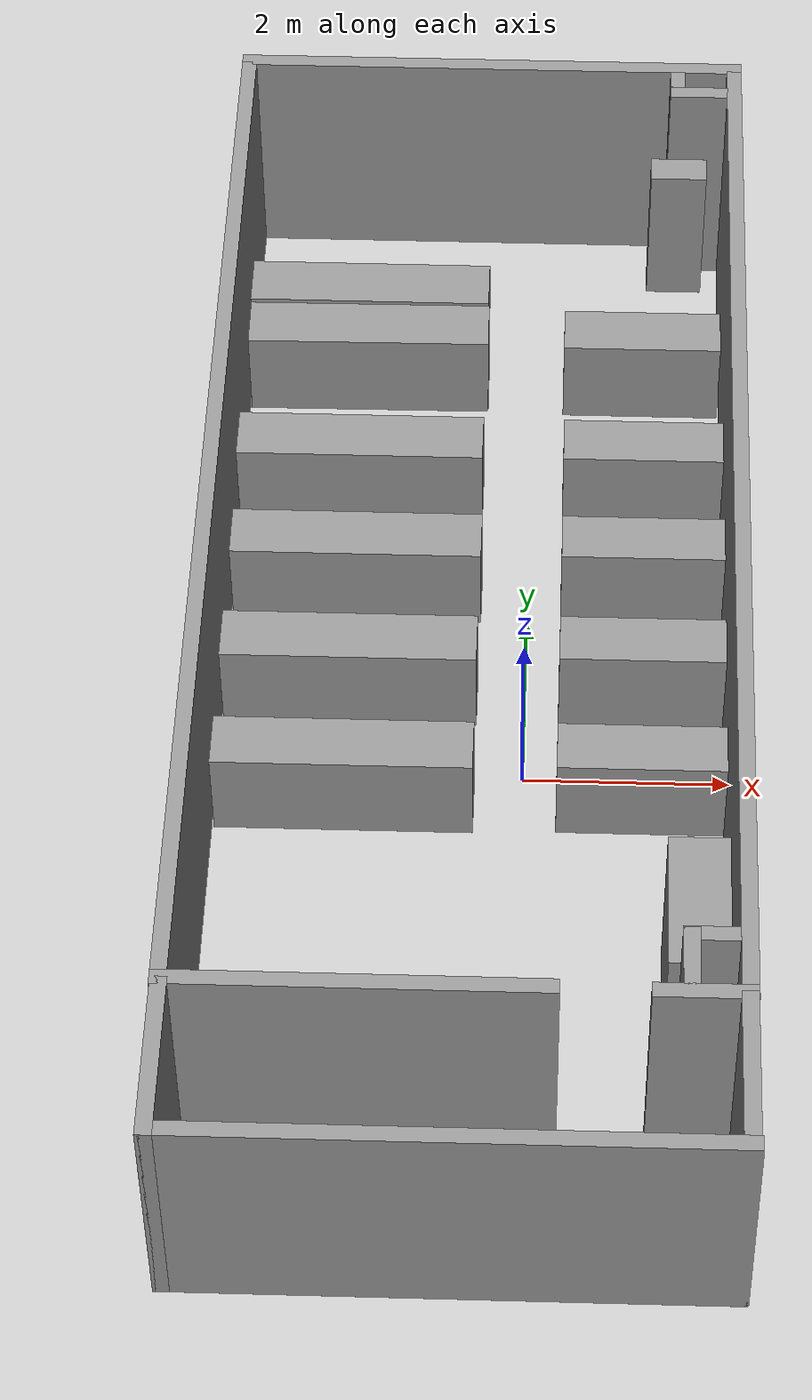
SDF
<sdf version="1.6">
 <world name="default">
  <light name="sun" type="directional">
   <pose>0 0 10 0 -0 0</pose>
   <diffuse>0.8 0.8 0.8 1</diffuse>
   <specular>0.2 0.2 0.2 1</specular>
   <attenuation>
    <range>1000</range>
    <constant>0.9</constant>
    <linear>0.01</linear>
    <quadratic>0.001</quadratic>
   </attenuation>
   <direction>-0.5 0.1 -0.9</direction>
  </light>
  <model name="ground_plane">
   <static>1</static>
   <link name="link">
    <collision name="collision">
     <geometry><plane><normal>0 0 1</normal><size>100 100</size></plane></geometry>
     <surface>
      <contact><collide_bitmask>65535</collide_bitmask></contact>
      <friction><ode><mu>1</mu><mu2>1</mu2></ode></friction>
     </surface>
    </collision>
    <visual name="visual">
     <cast_shadows>0</cast_shadows>
     <geometry><plane><normal>0 0 1</normal><size>100 100</size></plane></geometry>
     <material>
      <script><uri>file://media/materials/scripts/gazebo.material</uri><name>Gazebo/Grey</name></script>
     </material>
    </visual>
   </link>
  </model>
  <gravity>0 0 -9.8</gravity>
  <magnetic_field>6e-06 2.3e-05 -4.2e-05</magnetic_field>
  <atmosphere type="adiabatic"/>
  <physics name="default_physics" default="0" type="ode">
   <max_step_size>0.001</max_step_size>
   <real_time_factor>1</real_time_factor>
   <real_time_update_rate>1000</real_time_update_rate>
  </physics>
  <scene><ambient>0.4 0.4 0.4 1</ambient><background>0.7 0.7 0.7 1</background><shadows>1</shadows></scene>
  <audio><device>default</device></audio>
  <spherical_coordinates>
   <surface_model>EARTH_WGS84</surface_model>
   <latitude_deg>0</latitude_deg>
   <longitude_deg>0</longitude_deg>
   <elevation>0</elevation>
   <heading_deg>0</heading_deg>
  </spherical_coordinates>
  <model name="frame_503">
   <pose>-0.51144 1.67247 0 0 -0 0</pose>
   <link name="Wall_10">
    <collision name="Wall_10_Collision">
     <geometry><box><size>11.57 0.15 2.5</size></box></geometry>
     <pose>0 0 1.25 0 -0 0</pose>
    </collision>
    <visual name="Wall_10_Visual">
     <pose>0 0 1.25 0 -0 0</pose>
     <geometry><box><size>11.57 0.15 2.5</size></box></geometry>
     <material>
      <script><uri>file://media/materials/scripts/gazebo.material</uri><name>Gazebo/Grey</name></script>
      <ambient>1 1 1 1</ambient>
     </material>
     <meta><layer>0</layer></meta>
    </visual>
    <pose>2.5249 0.014025 0 0 -0 -1.5708</pose>
   </link>
   <link name="Wall_16">
    <collision name="Wall_16_Collision">
     <geometry><box><size>0.915 0.15 2.5</size></box></geometry>
     <pose>0 0 1.25 0 -0 0</pose>
    </collision>
    <visual name="Wall_16_Visual">
     <pose>0 0 1.25 0 -0 0</pose>
     <geometry><box><size>0.915 0.15 2.5</size></box></geometry>
     <material>
      <script><uri>file://media/materials/scripts/gazebo.material</uri><name>Gazebo/Grey</name></script>
      <ambient>1 1 1 1</ambient>
     </material>
     <meta><layer>0</layer></meta>
    </visual>
    <pose>2.1424 -5.84133 0 0 -0 0</pose>
   </link>
   <link name="Wall_18">
    <collision name="Wall_18_Collision">
     <geometry><box><size>0.61 0.15 2.5</size></box></geometry>
     <pose>0 0 1.25 0 -0 0</pose>
    </collision>
    <visual name="Wall_18_Visual">
     <pose>0 0 1.25 0 -0 0</pose>
     <geometry><box><size>0.61 0.15 2.5</size></box></geometry>
     <material>
      <script><uri>file://media/materials/scripts/gazebo.material</uri><name>Gazebo/Grey</name></script>
      <ambient>1 1 1 1</ambient>
     </material>
     <meta><layer>0</layer></meta>
    </visual>
    <pose>2.02787 -5.48355 0 0 -0 -1.5708</pose>
   </link>
   <link name="Wall_20">
    <collision name="Wall_20_Collision">
     <geometry><box><size>0.515 0.15 2.5</size></box></geometry>
     <pose>0 0 1.25 0 -0 0</pose>
    </collision>
    <visual name="Wall_20_Visual">
     <pose>0 0 1.25 0 -0 0</pose>
     <geometry><box><size>0.515 0.15 2.5</size></box></geometry>
     <material>
      <script><uri>file://media/materials/scripts/gazebo.material</uri><name>Gazebo/Grey</name></script>
      <ambient>1 1 1 1</ambient>
     </material>
     <meta><layer>0</layer></meta>
    </visual>
    <pose>2.21248 -5.24119 0 0 -0 0</pose>
   </link>
   <link name="Wall_22">
    <collision name="Wall_22_Collision">
     <geometry><box><size>3.5 0.15 2.5</size></box></geometry>
     <pose>0 0 1.25 0 -0 0</pose>
    </collision>
    <visual name="Wall_22_Visual">
     <pose>0 0 1.25 0 -0 0</pose>
     <geometry><box><size>3.5 0.15 2.5</size></box></geometry>
     <material>
      <script><uri>file://media/materials/scripts/gazebo.material</uri><name>Gazebo/Grey</name></script>
      <ambient>1 1 1 1</ambient>
     </material>
     <meta><layer>0</layer></meta>
    </visual>
    <pose>-0.849025 -5.83136 0 0 -0 0</pose>
   </link>
   <link name="Wall_27">
    <collision name="Wall_27_Collision">
     <geometry><box><size>0.23 0.15 2.5</size></box></geometry>
     <pose>0 0 1.25 0 -0 0</pose>
    </collision>
    <visual name="Wall_27_Visual">
     <pose>0 0 1.25 0 -0 0</pose>
     <geometry><box><size>0.23 0.15 2.5</size></box></geometry>
     <material>
      <script><uri>file://media/materials/scripts/gazebo.material</uri><name>Gazebo/Grey</name></script>
      <ambient>1 1 1 1</ambient>
     </material>
     <meta><layer>0</layer></meta>
    </visual>
    <pose>1.94245 5.66179 0 0 -0 -1.5708</pose>
   </link>
   <link name="Wall_29">
    <collision name="Wall_29_Collision">
     <geometry><box><size>0.59 0.15 2.5</size></box></geometry>
     <pose>0 0 1.25 0 -0 0</pose>
    </collision>
    <visual name="Wall_29_Visual">
     <pose>0 0 1.25 0 -0 0</pose>
     <geometry><box><size>0.59 0.15 2.5</size></box></geometry>
     <material>
      <script><uri>file://media/materials/scripts/gazebo.material</uri><name>Gazebo/Grey</name></script>
      <ambient>1 1 1 1</ambient>
     </material>
     <meta><layer>0</layer></meta>
    </visual>
    <pose>2.16053 5.47077 0 0 -0 0</pose>
   </link>
   <link name="Wall_33">
    <collision name="Wall_33_Collision">
     <geometry><box><size>0.57 0.04 1.3</size></box></geometry>
     <pose>0 0 0.65 0 -0 0</pose>
    </collision>
    <visual name="Wall_33_Visual">
     <pose>0 0 0.65 0 -0 0</pose>
     <geometry><box><size>0.57 0.04 1.3</size></box></geometry>
     <material>
      <script><uri>file://media/materials/scripts/gazebo.material</uri><name>Gazebo/Grey</name></script>
      <ambient>1 1 1 1</ambient>
     </material>
     <meta><layer>0</layer></meta>
    </visual>
    <pose>-2.42208 -5.46511 0 0 -0 -1.5708</pose>
   </link>
   <link name="Wall_35">
    <collision name="Wall_35_Collision">
     <geometry><box><size>0.57 0.04 1.3</size></box></geometry>
     <pose>0 0 0.65 0 -0 0</pose>
    </collision>
    <visual name="Wall_35_Visual">
     <pose>0 0 0.65 0 -0 0</pose>
     <geometry><box><size>0.57 0.04 1.3</size></box></geometry>
     <material>
      <script><uri>file://media/materials/scripts/gazebo.material</uri><name>Gazebo/Grey</name></script>
      <ambient>1 1 1 1</ambient>
     </material>
     <meta><layer>0</layer></meta>
    </visual>
    <pose>-1.81841 -5.4653 0 0 -0 -1.5708</pose>
   </link>
   <link name="Wall_6">
    <collision name="Wall_6_Collision">
     <geometry><box><size>5.2 0.15 2.5</size></box></geometry>
     <pose>0 0 1.25 0 -0 0</pose>
    </collision>
    <visual name="Wall_6_Visual">
     <pose>0 0 1.25 0 -0 0</pose>
     <geometry><box><size>5.2 0.15 2.5</size></box></geometry>
     <material>
      <script><uri>file://media/materials/scripts/gazebo.material</uri><name>Gazebo/Grey</name></script>
      <ambient>1 1 1 1</ambient>
     </material>
     <meta><layer>0</layer></meta>
    </visual>
    <pose>0 5.84133 0 0 -0 0</pose>
   </link>
   <link name="Wall_8">
    <collision name="Wall_8_Collision">
     <geometry><box><size>11.57 0.15 2.5</size></box></geometry>
     <pose>0 0 1.25 0 -0 0</pose>
    </collision>
    <visual name="Wall_8_Visual">
     <pose>0 0 1.25 0 -0 0</pose>
     <geometry><box><size>11.57 0.15 2.5</size></box></geometry>
     <material>
      <script><uri>file://media/materials/scripts/gazebo.material</uri><name>Gazebo/Grey</name></script>
      <ambient>1 1 1 1</ambient>
     </material>
     <meta><layer>0</layer></meta>
    </visual>
    <pose>-2.52426 0.021404 0 0 -0 -1.5708</pose>
   </link>
   <static>1</static>
  </model>
  <model name="unit_box_0_clone_clone_clone">
   <pose>-1.69923 2.27247 0.499941 -0 -4.8e-05 0.000164</pose>
   <link name="link">
    <inertial>
     <mass>1</mass>
     <inertia>
      <ixx>0.166667</ixx>
      <ixy>0</ixy>
      <ixz>0</ixz>
      <iyy>0.166667</iyy>
      <iyz>0</iyz>
      <izz>0.166667</izz>
     </inertia>
    </inertial>
    <collision name="collision"><geometry><box><size>2.47511 0.557169 1</size></box></geometry></collision>
    <visual name="visual">
     <geometry><box><size>2.47511 0.557169 1</size></box></geometry>
     <material>
      <script><name>Gazebo/Grey</name><uri>file://media/materials/scripts/gazebo.material</uri></script>
     </material>
    </visual>
   </link>
  </model>
  <model name="unit_box_0_clone_clone_clone_0">
   <pose>-1.70483 0.948399 0.499941 -0 -4.8e-05 0.000164</pose>
   <link name="link">
    <inertial>
     <mass>1</mass>
     <inertia>
      <ixx>0.166667</ixx>
      <ixy>0</ixy>
      <ixz>0</ixz>
      <iyy>0.166667</iyy>
      <iyz>0</iyz>
      <izz>0.166667</izz>
     </inertia>
    </inertial>
    <collision name="collision"><geometry><box><size>2.47511 0.557169 1</size></box></geometry></collision>
    <visual name="visual">
     <geometry><box><size>2.47511 0.557169 1</size></box></geometry>
     <material>
      <script><name>Gazebo/Grey</name><uri>file://media/materials/scripts/gazebo.material</uri></script>
     </material>
    </visual>
   </link>
  </model>
  <model name="unit_box_0_clone_clone_clone_0_clone">
   <pose>-1.70098 -0.369279 0.499941 0 4.8e-05 0.000177</pose>
   <link name="link">
    <inertial>
     <mass>1</mass>
     <inertia>
      <ixx>0.166667</ixx>
      <ixy>0</ixy>
      <ixz>0</ixz>
      <iyy>0.166667</iyy>
      <iyz>0</iyz>
      <izz>0.166667</izz>
     </inertia>
    </inertial>
    <collision name="collision"><geometry><box><size>2.47511 0.557169 1</size></box></geometry></collision>
    <visual name="visual">
     <geometry><box><size>2.47511 0.557169 1</size></box></geometry>
     <material>
      <script><name>Gazebo/Grey</name><uri>file://media/materials/scripts/gazebo.material</uri></script>
     </material>
    </visual>
   </link>
  </model>
  <model name="unit_box_2_clone">
   <pose>1.1325 3.59096 0.5 0 -0 1e-06</pose>
   <link name="link">
    <inertial>
     <mass>1</mass>
     <inertia>
      <ixx>0.166667</ixx>
      <ixy>0</ixy>
      <ixz>0</ixz>
      <iyy>0.166667</iyy>
      <iyz>0</iyz>
      <izz>0.166667</izz>
     </inertia>
    </inertial>
    <collision name="collision"><geometry><box><size>1.60488 0.534296 1</size></box></geometry></collision>
    <visual name="visual">
     <geometry><box><size>1.60488 0.534296 1</size></box></geometry>
     <material>
      <script><name>Gazebo/Grey</name><uri>file://media/materials/scripts/gazebo.material</uri></script>
     </material>
    </visual>
   </link>
  </model>
  <model name="unit_box_2_clone_clone">
   <pose>1.13602 2.28528 0.5 0 -0 1e-05</pose>
   <link name="link">
    <inertial>
     <mass>1</mass>
     <inertia>
      <ixx>0.166667</ixx>
      <ixy>0</ixy>
      <ixz>0</ixz>
      <iyy>0.166667</iyy>
      <iyz>0</iyz>
      <izz>0.166667</izz>
     </inertia>
    </inertial>
    <collision name="collision"><geometry><box><size>1.60488 0.534296 1</size></box></geometry></collision>
    <visual name="visual">
     <geometry><box><size>1.60488 0.534296 1</size></box></geometry>
     <material>
      <script><name>Gazebo/Grey</name><uri>file://media/materials/scripts/gazebo.material</uri></script>
     </material>
    </visual>
   </link>
  </model>
  <model name="unit_box_2_clone_clone_clone">
   <pose>1.13473 0.978813 0.5 0 -0 1e-06</pose>
   <link name="link">
    <inertial>
     <mass>1</mass>
     <inertia>
      <ixx>0.166667</ixx>
      <ixy>0</ixy>
      <ixz>0</ixz>
      <iyy>0.166667</iyy>
      <iyz>0</iyz>
      <izz>0.166667</izz>
     </inertia>
    </inertial>
    <collision name="collision"><geometry><box><size>1.60488 0.534296 1</size></box></geometry></collision>
    <visual name="visual">
     <geometry><box><size>1.60488 0.534296 1</size></box></geometry>
     <material>
      <script><name>Gazebo/Grey</name><uri>file://media/materials/scripts/gazebo.material</uri></script>
     </material>
    </visual>
   </link>
  </model>
  <model name="unit_box_2_clone_clone_clone_clone">
   <pose>1.13183 -0.350955 0.5 0 -0 1e-06</pose>
   <link name="link">
    <inertial>
     <mass>1</mass>
     <inertia>
      <ixx>0.166667</ixx>
      <ixy>0</ixy>
      <ixz>0</ixz>
      <iyy>0.166667</iyy>
      <iyz>0</iyz>
      <izz>0.166667</izz>
     </inertia>
    </inertial>
    <collision name="collision"><geometry><box><size>1.60488 0.534296 1</size></box></geometry></collision>
    <visual name="visual">
     <geometry><box><size>1.60488 0.534296 1</size></box></geometry>
     <material>
      <script><name>Gazebo/Grey</name><uri>file://media/materials/scripts/gazebo.material</uri></script>
     </material>
    </visual>
   </link>
  </model>
  <model name="unit_box_0_clone_clone_clone_clone">
   <pose>-1.72224 3.5907 0.499941 0 4.8e-05 -0.000613</pose>
   <link name="link">
    <inertial>
     <mass>1</mass>
     <inertia>
      <ixx>0.166667</ixx>
      <ixy>0</ixy>
      <ixz>0</ixz>
      <iyy>0.166667</iyy>
      <iyz>0</iyz>
      <izz>0.166667</izz>
     </inertia>
    </inertial>
    <collision name="collision"><geometry><box><size>2.47511 0.557169 1</size></box></geometry></collision>
    <visual name="visual">
     <geometry><box><size>2.47511 0.557169 1</size></box></geometry>
     <material>
      <script><name>Gazebo/Grey</name><uri>file://media/materials/scripts/gazebo.material</uri></script>
     </material>
    </visual>
   </link>
  </model>
  <model name="unit_box_0_clone_clone_clone_clone_clone">
   <pose>-1.70869 5.17268 0.499941 -0 4.8e-05 0.00557</pose>
   <link name="link">
    <inertial>
     <mass>1</mass>
     <inertia>
      <ixx>0.166667</ixx>
      <ixy>0</ixy>
      <ixz>0</ixz>
      <iyy>0.166667</iyy>
      <iyz>0</iyz>
      <izz>0.166667</izz>
     </inertia>
    </inertial>
    <collision name="collision"><geometry><box><size>2.47511 0.557169 1</size></box></geometry></collision>
    <visual name="visual">
     <geometry><box><size>2.47511 0.557169 1</size></box></geometry>
     <material>
      <script><name>Gazebo/Grey</name><uri>file://media/materials/scripts/gazebo.material</uri></script>
     </material>
    </visual>
   </link>
  </model>
  <model name="unit_box_2_clone_clone_0">
   <pose>1.11586 5.14227 0.5 -0 -0 -1e-06</pose>
   <link name="link">
    <inertial>
     <mass>1</mass>
     <inertia>
      <ixx>0.166667</ixx>
      <ixy>0</ixy>
      <ixz>0</ixz>
      <iyy>0.166667</iyy>
      <iyz>0</iyz>
      <izz>0.166667</izz>
     </inertia>
    </inertial>
    <collision name="collision"><geometry><box><size>1.60488 0.534296 1</size></box></geometry></collision>
    <visual name="visual">
     <geometry><box><size>1.60488 0.534296 1</size></box></geometry>
     <material>
      <script><name>Gazebo/Grey</name><uri>file://media/materials/scripts/gazebo.material</uri></script>
     </material>
    </visual>
   </link>
  </model>
  <model name="unit_box_0_clone_clone_clone_clone_clone_clone">
   <pose>-1.72084 5.77229 0.499941 0 4.8e-05 -0.000902</pose>
   <link name="link">
    <inertial>
     <mass>1</mass>
     <inertia>
      <ixx>0.166667</ixx>
      <ixy>0</ixy>
      <ixz>0</ixz>
      <iyy>0.166667</iyy>
      <iyz>0</iyz>
      <izz>0.166667</izz>
     </inertia>
    </inertial>
    <collision name="collision"><geometry><box><size>2.47511 0.557169 1</size></box></geometry></collision>
    <visual name="visual">
     <geometry><box><size>2.47511 0.557169 1</size></box></geometry>
     <material>
      <script><name>Gazebo/Grey</name><uri>file://media/materials/scripts/gazebo.material</uri></script>
     </material>
    </visual>
   </link>
  </model>
  <model name="unit_box">
   <pose>1.47152 6.88555 0.826914 -1e-06 -0 0.000394</pose>
   <link name="link">
    <inertial>
     <mass>1</mass>
     <inertia>
      <ixx>0.166667</ixx>
      <ixy>0</ixy>
      <ixz>0</ixz>
      <iyy>0.166667</iyy>
      <iyz>0</iyz>
      <izz>0.166667</izz>
     </inertia>
    </inertial>
    <collision name="collision"><geometry><box><size>0.574908 0.30291 1.65383</size></box></geometry></collision>
    <visual name="visual">
     <geometry><box><size>0.574908 0.30291 1.65383</size></box></geometry>
     <material>
      <script><name>Gazebo/Grey</name><uri>file://media/materials/scripts/gazebo.material</uri></script>
     </material>
    </visual>
   </link>
  </model>
  <model name="unit_box_0">
   <pose>1.62573 -2.62412 0.84926 7e-06 -0 -6e-06</pose>
   <link name="link">
    <inertial>
     <mass>1</mass>
     <inertia>
      <ixx>0.166667</ixx>
      <ixy>0</ixy>
      <ixz>0</ixz>
      <iyy>0.166667</iyy>
      <iyz>0</iyz>
      <izz>0.166667</izz>
     </inertia>
    </inertial>
    <collision name="collision"><geometry><box><size>0.565294 1.38775 1.69853</size></box></geometry></collision>
    <visual name="visual">
     <geometry><box><size>0.565294 1.38775 1.69853</size></box></geometry>
     <material>
      <script><name>Gazebo/Grey</name><uri>file://media/materials/scripts/gazebo.material</uri></script>
     </material>
    </visual>
   </link>
  </model>
  <model name="hall">
   <pose>-0.502058 -4.95666 0 0 -0 0</pose>
   <link name="Wall_0">
    <collision name="Wall_0_Collision">
     <geometry><box><size>1.6 0.15 2.5</size></box></geometry>
     <pose>0 0 1.25 0 -0 0</pose>
    </collision>
    <visual name="Wall_0_Visual">
     <pose>0 0 1.25 0 -0 0</pose>
     <geometry><box><size>1.6 0.15 2.5</size></box></geometry>
     <material>
      <script><uri>file://media/materials/scripts/gazebo.material</uri><name>Gazebo/Grey</name></script>
      <ambient>1 1 1 1</ambient>
     </material>
     <meta><layer>0</layer></meta>
    </visual>
    <pose>-2.525 0 0 0 -0 -1.5708</pose>
   </link>
   <link name="Wall_3">
    <collision name="Wall_3_Collision">
     <geometry><box><size>5.2 0.15 2.5</size></box></geometry>
     <pose>0 0 1.25 0 -0 0</pose>
    </collision>
    <visual name="Wall_3_Visual">
     <pose>0 0 1.25 0 -0 0</pose>
     <geometry><box><size>5.2 0.15 2.5</size></box></geometry>
     <material>
      <script><uri>file://media/materials/scripts/gazebo.material</uri><name>Gazebo/Grey</name></script>
      <ambient>1 1 1 1</ambient>
     </material>
     <meta><layer>0</layer></meta>
    </visual>
    <pose>0 -0.725 0 0 -0 0</pose>
   </link>
   <link name="Wall_5">
    <collision name="Wall_5_Collision">
     <geometry><box><size>1.6 0.15 2.5</size></box></geometry>
     <pose>0 0 1.25 0 -0 0</pose>
    </collision>
    <visual name="Wall_5_Visual">
     <pose>0 0 1.25 0 -0 0</pose>
     <geometry><box><size>1.6 0.15 2.5</size></box></geometry>
     <material>
      <script><uri>file://media/materials/scripts/gazebo.material</uri><name>Gazebo/Grey</name></script>
      <ambient>1 1 1 1</ambient>
     </material>
     <meta><layer>0</layer></meta>
    </visual>
    <pose>2.50994 0 0 0 -0 -1.5708</pose>
   </link>
   <static>1</static>
  </model>
 </world>
</sdf>
